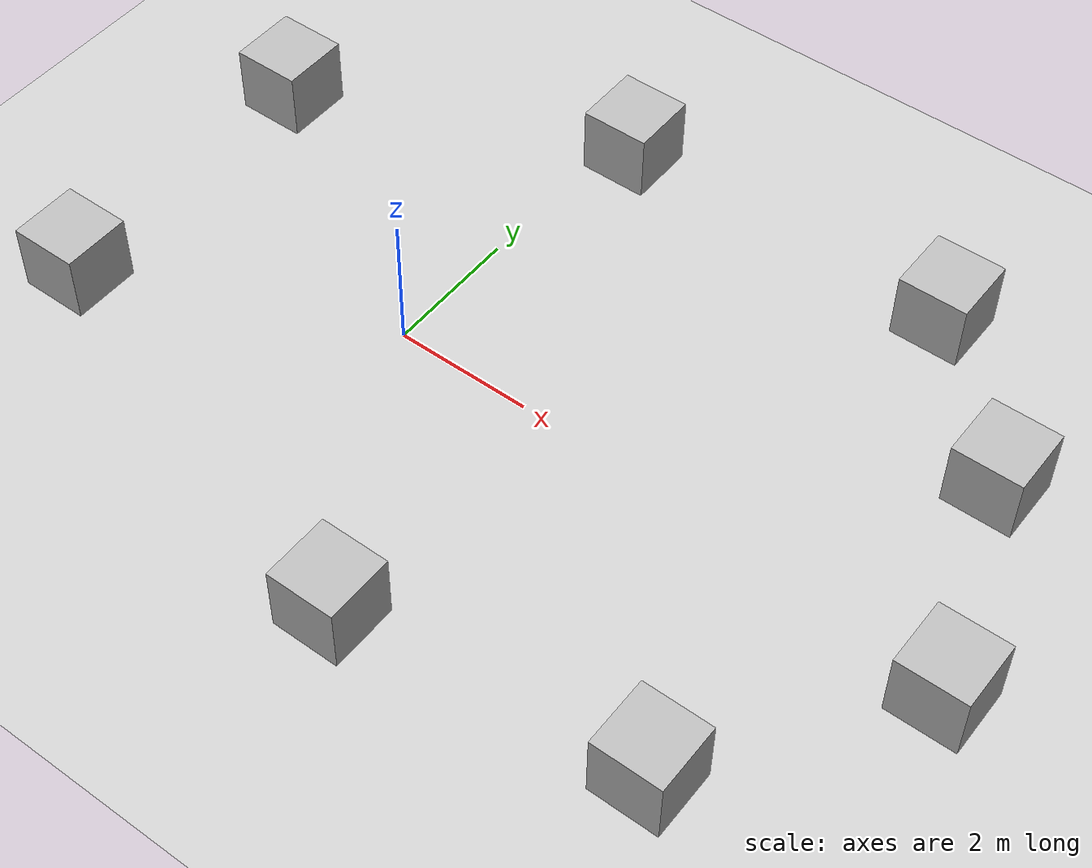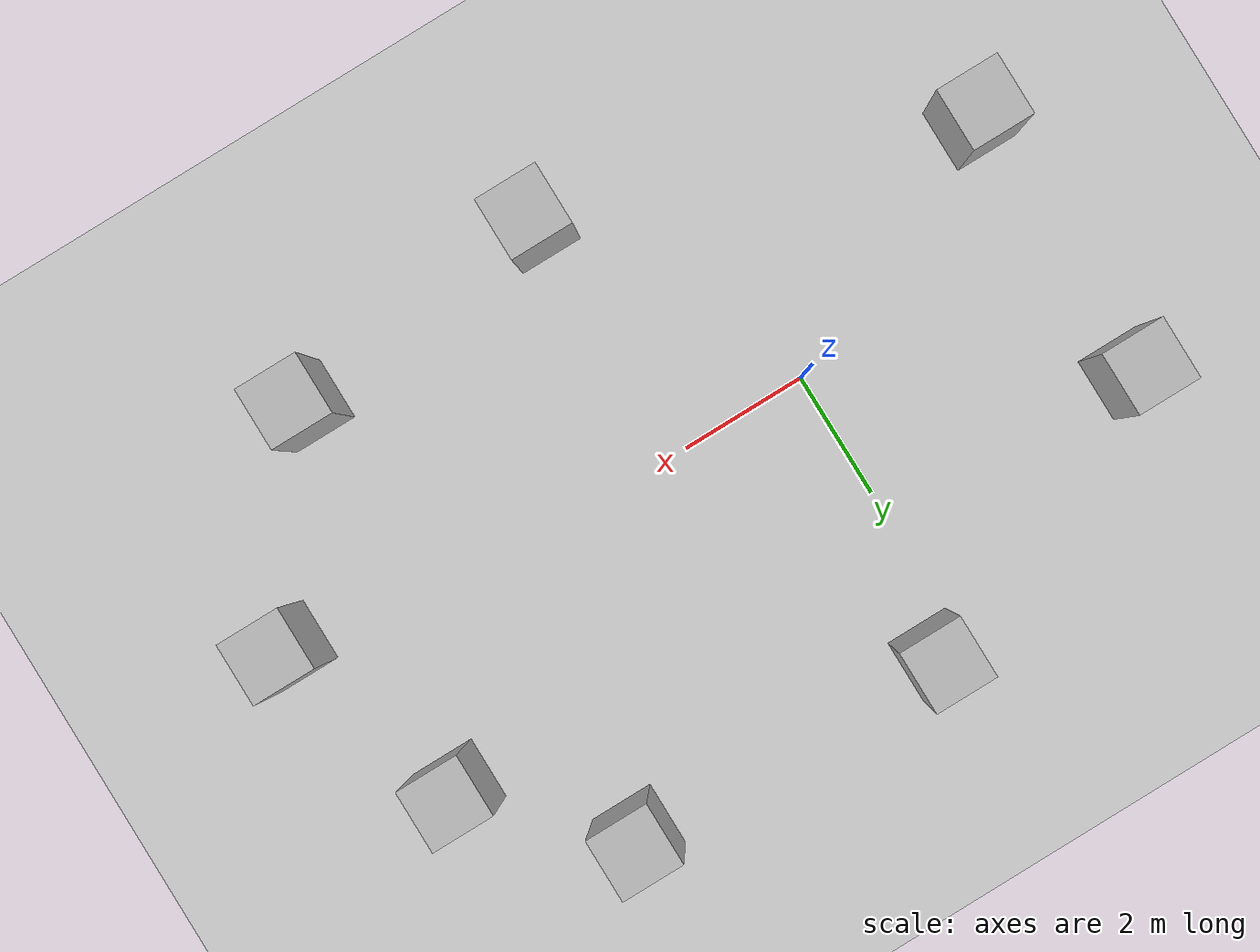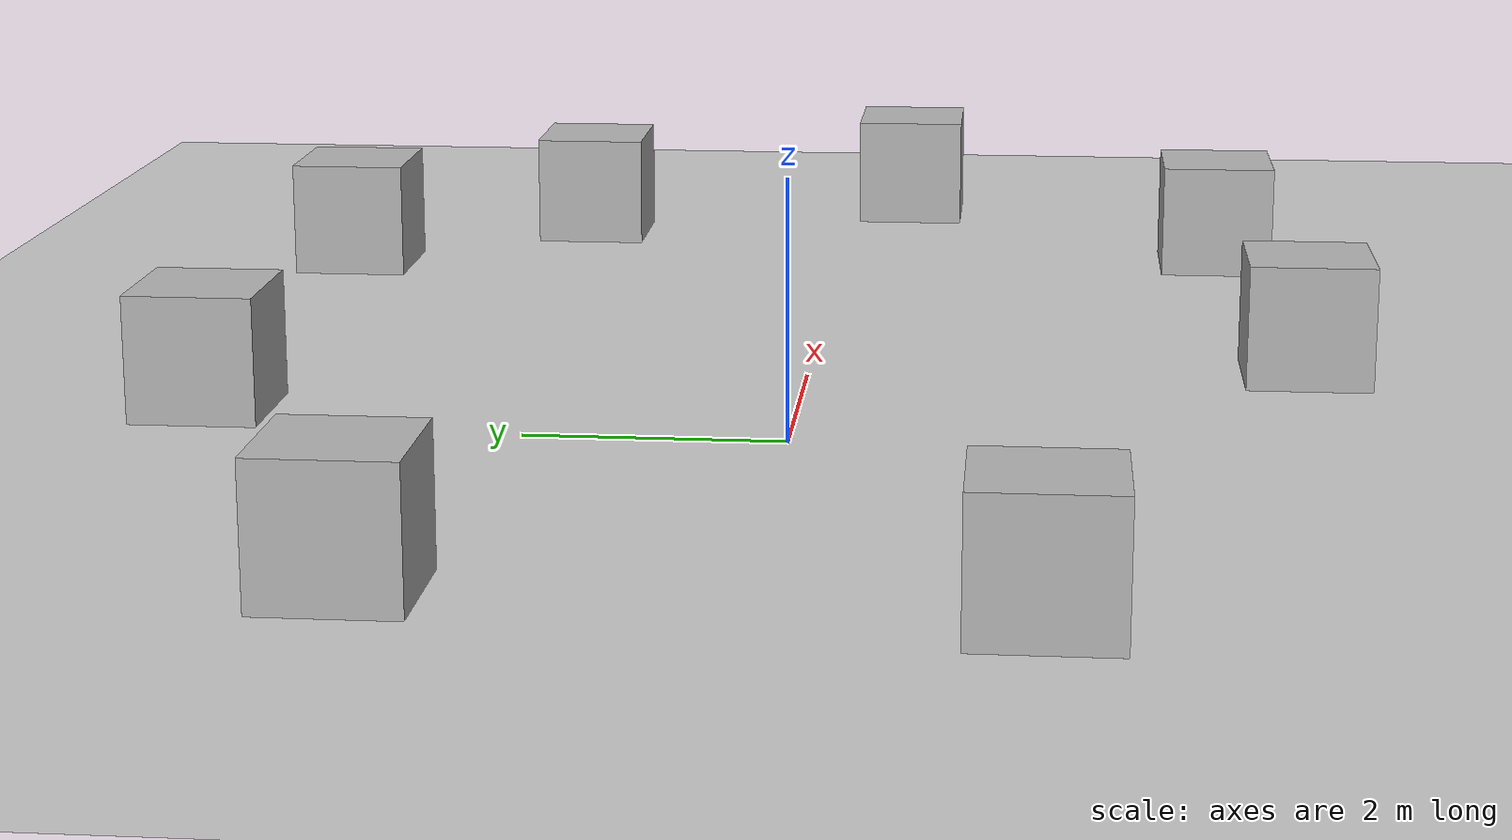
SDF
<sdf version="1.7">
 <world name="default">
  <light name="sun" type="directional">
   <pose>0 0 10 0 -0 0</pose>
   <diffuse>0.8 0.8 0.8 1</diffuse>
   <specular>0.2 0.2 0.2 1</specular>
   <attenuation>
    <range>1000</range>
    <constant>0.9</constant>
    <linear>0.01</linear>
    <quadratic>0.001</quadratic>
   </attenuation>
   <direction>-0.5 0.1 -0.9</direction>
  </light>
  <model name="ground_plane">
   <static>1</static>
   <link name="link">
    <collision name="collision">
     <geometry><plane><normal>0 0 1</normal><size>100 100</size></plane></geometry>
     <surface>
      <contact><collide_bitmask>65535</collide_bitmask></contact>
      <friction><ode><mu>100</mu><mu2>50</mu2></ode></friction>
     </surface>
    </collision>
    <visual name="visual">
     <cast_shadows>0</cast_shadows>
     <geometry><plane><normal>0 0 1</normal><size>100 100</size></plane></geometry>
     <material>
      <script><uri>file://media/materials/scripts/gazebo.material</uri><name>Gazebo/Grey</name></script>
     </material>
    </visual>
   </link>
  </model>
  <gravity>0 0 -9.8</gravity>
  <magnetic_field>6e-06 2.3e-05 -4.2e-05</magnetic_field>
  <atmosphere type="adiabatic"/>
  <physics type="ode">
   <max_step_size>0.001</max_step_size>
   <real_time_factor>1</real_time_factor>
   <real_time_update_rate>1000</real_time_update_rate>
  </physics>
  <scene><ambient>0.4 0.4 0.4 1</ambient><background>0.7 0.7 0.7 1</background><shadows>1</shadows></scene>
  <spherical_coordinates>
   <surface_model>EARTH_WGS84</surface_model>
   <latitude_deg>0</latitude_deg>
   <longitude_deg>0</longitude_deg>
   <elevation>0</elevation>
   <heading_deg>0</heading_deg>
  </spherical_coordinates>
  <model name="skittles">
   <link name="link_0">
    <inertial>
     <mass>1</mass>
     <inertia>
      <ixx>0.166667</ixx>
      <ixy>0</ixy>
      <ixz>0</ixz>
      <iyy>0.166667</iyy>
      <iyz>0</iyz>
      <izz>0.166667</izz>
     </inertia>
    </inertial>
    <visual name="visual">
     <geometry><box><size>1 1 1</size></box></geometry>
     <material>
      <script>
       <uri>model://skittles/materials/scripts</uri>
       <uri>model://skittles/materials/textures</uri>
       <name>SkittlesTexture</name>
      </script>
     </material>
    </visual>
    <collision name="collision">
     <geometry><box><size>1 1 1</size></box></geometry>
     <surface>
      <friction>
       <ode><mu>1</mu><mu2>1</mu2><fdir1>0 0 0</fdir1><slip1>0</slip1><slip2>0</slip2></ode>
       <torsional>
        <coefficient>1</coefficient>
        <patch_radius>0</patch_radius>
        <surface_radius>0</surface_radius>
        <use_patch_radius>1</use_patch_radius>
        <ode><slip>0</slip></ode>
       </torsional>
      </friction>
      <bounce><restitution_coefficient>0</restitution_coefficient><threshold>1e+06</threshold></bounce>
      <contact>
       <collide_without_contact>0</collide_without_contact>
       <collide_without_contact_bitmask>1</collide_without_contact_bitmask>
       <collide_bitmask>1</collide_bitmask>
       <ode>
        <soft_cfm>0</soft_cfm>
        <soft_erp>0.2</soft_erp>
        <kp>1e+13</kp>
        <kd>1</kd>
        <max_vel>0.01</max_vel>
        <min_depth>0</min_depth>
       </ode>
       <bullet>
        <split_impulse>1</split_impulse>
        <split_impulse_penetration_threshold>-0.01</split_impulse_penetration_threshold>
        <soft_cfm>0</soft_cfm>
        <soft_erp>0.2</soft_erp>
        <kp>1e+13</kp>
        <kd>1</kd>
       </bullet>
      </contact>
     </surface>
    </collision>
   </link>
   <static>0</static>
   <pose>0.464514 4.53329 0.523855 0 -0 0</pose>
  </model>
  <model name="haribo">
   <link name="link_0">
    <inertial>
     <mass>1</mass>
     <inertia>
      <ixx>0.166667</ixx>
      <ixy>0</ixy>
      <ixz>0</ixz>
      <iyy>0.166667</iyy>
      <iyz>0</iyz>
      <izz>0.166667</izz>
     </inertia>
    </inertial>
    <visual name="visual">
     <geometry><box><size>1 1 1</size></box></geometry>
     <material>
      <script>
       <uri>model://haribo/materials/scripts</uri>
       <uri>model://haribo/materials/textures</uri>
       <name>HariboTexture</name>
      </script>
      <shader type="pixel"/>
     </material>
    </visual>
    <collision name="collision">
     <geometry><box><size>1 1 1</size></box></geometry>
     <surface>
      <friction>
       <ode><mu>1</mu><mu2>1</mu2><fdir1>0 0 0</fdir1><slip1>0</slip1><slip2>0</slip2></ode>
       <torsional>
        <coefficient>1</coefficient>
        <patch_radius>0</patch_radius>
        <surface_radius>0</surface_radius>
        <use_patch_radius>1</use_patch_radius>
        <ode><slip>0</slip></ode>
       </torsional>
      </friction>
      <bounce><restitution_coefficient>0</restitution_coefficient><threshold>1e+06</threshold></bounce>
      <contact>
       <collide_without_contact>0</collide_without_contact>
       <collide_without_contact_bitmask>1</collide_without_contact_bitmask>
       <collide_bitmask>1</collide_bitmask>
       <ode>
        <soft_cfm>0</soft_cfm>
        <soft_erp>0.2</soft_erp>
        <kp>1e+13</kp>
        <kd>1</kd>
        <max_vel>0.01</max_vel>
        <min_depth>0</min_depth>
       </ode>
       <bullet>
        <split_impulse>1</split_impulse>
        <split_impulse_penetration_threshold>-0.01</split_impulse_penetration_threshold>
        <soft_cfm>0</soft_cfm>
        <soft_erp>0.2</soft_erp>
        <kp>1e+13</kp>
        <kd>1</kd>
       </bullet>
      </contact>
     </surface>
    </collision>
   </link>
   <static>0</static>
   <pose>5.56285 4.45855 0.557558 0 -0 0</pose>
  </model>
  <model name="nerds">
   <link name="link_0">
    <inertial>
     <mass>1</mass>
     <inertia>
      <ixx>0.166667</ixx>
      <ixy>0</ixy>
      <ixz>0</ixz>
      <iyy>0.166667</iyy>
      <iyz>0</iyz>
      <izz>0.166667</izz>
     </inertia>
    </inertial>
    <visual name="visual">
     <geometry><box><size>1 1 1</size></box></geometry>
     <material>
      <script>
       <uri>model://nerds/materials/scripts</uri>
       <uri>model://nerds/materials/textures</uri>
       <name>NerdsTexture</name>
      </script>
     </material>
    </visual>
    <collision name="collision">
     <geometry><box><size>1 1 1</size></box></geometry>
     <surface>
      <friction>
       <ode><mu>1</mu><mu2>1</mu2><fdir1>0 0 0</fdir1><slip1>0</slip1><slip2>0</slip2></ode>
       <torsional>
        <coefficient>1</coefficient>
        <patch_radius>0</patch_radius>
        <surface_radius>0</surface_radius>
        <use_patch_radius>1</use_patch_radius>
        <ode><slip>0</slip></ode>
       </torsional>
      </friction>
      <bounce><restitution_coefficient>0</restitution_coefficient><threshold>1e+06</threshold></bounce>
      <contact>
       <collide_without_contact>0</collide_without_contact>
       <collide_without_contact_bitmask>1</collide_without_contact_bitmask>
       <collide_bitmask>1</collide_bitmask>
       <ode>
        <soft_cfm>0</soft_cfm>
        <soft_erp>0.2</soft_erp>
        <kp>1e+13</kp>
        <kd>1</kd>
        <max_vel>0.01</max_vel>
        <min_depth>0</min_depth>
       </ode>
       <bullet>
        <split_impulse>1</split_impulse>
        <split_impulse_penetration_threshold>-0.01</split_impulse_penetration_threshold>
        <soft_cfm>0</soft_cfm>
        <soft_erp>0.2</soft_erp>
        <kp>1e+13</kp>
        <kd>1</kd>
       </bullet>
      </contact>
     </surface>
    </collision>
   </link>
   <static>0</static>
   <pose>7.4921 2.50482 0.477706 0 -0 0</pose>
  </model>
  <model name="reeses">
   <link name="link_0">
    <inertial>
     <mass>1</mass>
     <inertia>
      <ixx>0.166667</ixx>
      <ixy>0</ixy>
      <ixz>0</ixz>
      <iyy>0.166667</iyy>
      <iyz>0</iyz>
      <izz>0.166667</izz>
     </inertia>
    </inertial>
    <visual name="visual">
     <geometry><box><size>1 1 1</size></box></geometry>
     <material>
      <script>
       <uri>model://reeses/materials/scripts</uri>
       <uri>model://reeses/materials/textures</uri>
       <name>ReesesTexture</name>
      </script>
     </material>
    </visual>
    <collision name="collision">
     <geometry><box><size>1 1 1</size></box></geometry>
     <surface>
      <friction>
       <ode><mu>1</mu><mu2>1</mu2><fdir1>0 0 0</fdir1><slip1>0</slip1><slip2>0</slip2></ode>
       <torsional>
        <coefficient>1</coefficient>
        <patch_radius>0</patch_radius>
        <surface_radius>0</surface_radius>
        <use_patch_radius>1</use_patch_radius>
        <ode><slip>0</slip></ode>
       </torsional>
      </friction>
      <bounce><restitution_coefficient>0</restitution_coefficient><threshold>1e+06</threshold></bounce>
      <contact>
       <collide_without_contact>0</collide_without_contact>
       <collide_without_contact_bitmask>1</collide_without_contact_bitmask>
       <collide_bitmask>1</collide_bitmask>
       <ode>
        <soft_cfm>0</soft_cfm>
        <soft_erp>0.2</soft_erp>
        <kp>1e+13</kp>
        <kd>1</kd>
        <max_vel>0.01</max_vel>
        <min_depth>0</min_depth>
       </ode>
       <bullet>
        <split_impulse>1</split_impulse>
        <split_impulse_penetration_threshold>-0.01</split_impulse_penetration_threshold>
        <soft_cfm>0</soft_cfm>
        <soft_erp>0.2</soft_erp>
        <kp>1e+13</kp>
        <kd>1</kd>
       </bullet>
      </contact>
     </surface>
    </collision>
   </link>
   <static>0</static>
   <pose>8.5349 -0.562949 0.516567 0 -0 0</pose>
  </model>
  <model name="snickers">
   <link name="link_0">
    <inertial>
     <mass>1</mass>
     <inertia>
      <ixx>0.166667</ixx>
      <ixy>0</ixy>
      <ixz>0</ixz>
      <iyy>0.166667</iyy>
      <iyz>0</iyz>
      <izz>0.166667</izz>
     </inertia>
    </inertial>
    <visual name="visual">
     <geometry><box><size>1 1 1</size></box></geometry>
     <material>
      <script>
       <uri>model://snickers/materials/scripts</uri>
       <uri>model://snickers/materials/textures</uri>
       <name>SnickersTexture</name>
      </script>
     </material>
    </visual>
    <collision name="collision">
     <geometry><box><size>1 1 1</size></box></geometry>
     <surface>
      <friction>
       <ode><mu>1</mu><mu2>1</mu2><fdir1>0 0 0</fdir1><slip1>0</slip1><slip2>0</slip2></ode>
       <torsional>
        <coefficient>1</coefficient>
        <patch_radius>0</patch_radius>
        <surface_radius>0</surface_radius>
        <use_patch_radius>1</use_patch_radius>
        <ode><slip>0</slip></ode>
       </torsional>
      </friction>
      <bounce><restitution_coefficient>0</restitution_coefficient><threshold>1e+06</threshold></bounce>
      <contact>
       <collide_without_contact>0</collide_without_contact>
       <collide_without_contact_bitmask>1</collide_without_contact_bitmask>
       <collide_bitmask>1</collide_bitmask>
       <ode>
        <soft_cfm>0</soft_cfm>
        <soft_erp>0.2</soft_erp>
        <kp>1e+13</kp>
        <kd>1</kd>
        <max_vel>0.01</max_vel>
        <min_depth>0</min_depth>
       </ode>
       <bullet>
        <split_impulse>1</split_impulse>
        <split_impulse_penetration_threshold>-0.01</split_impulse_penetration_threshold>
        <soft_cfm>0</soft_cfm>
        <soft_erp>0.2</soft_erp>
        <kp>1e+13</kp>
        <kd>1</kd>
       </bullet>
      </contact>
     </surface>
    </collision>
   </link>
   <static>0</static>
   <pose>6.45937 -3.48752 0.494415 0 -0 0</pose>
  </model>
  <model name="starburst">
   <link name="link_0">
    <inertial>
     <mass>1</mass>
     <inertia>
      <ixx>0.166667</ixx>
      <ixy>0</ixy>
      <ixz>0</ixz>
      <iyy>0.166667</iyy>
      <iyz>0</iyz>
      <izz>0.166667</izz>
     </inertia>
    </inertial>
    <visual name="visual">
     <geometry><box><size>1 1 1</size></box></geometry>
     <material>
      <script>
       <uri>model://starburst/materials/scripts</uri>
       <uri>model://starburst/materials/textures</uri>
       <name>StarburstTexture</name>
      </script>
     </material>
    </visual>
    <collision name="collision">
     <geometry><box><size>1 1 1</size></box></geometry>
     <surface>
      <friction>
       <ode><mu>1</mu><mu2>1</mu2><fdir1>0 0 0</fdir1><slip1>0</slip1><slip2>0</slip2></ode>
       <torsional>
        <coefficient>1</coefficient>
        <patch_radius>0</patch_radius>
        <surface_radius>0</surface_radius>
        <use_patch_radius>1</use_patch_radius>
        <ode><slip>0</slip></ode>
       </torsional>
      </friction>
      <bounce><restitution_coefficient>0</restitution_coefficient><threshold>1e+06</threshold></bounce>
      <contact>
       <collide_without_contact>0</collide_without_contact>
       <collide_without_contact_bitmask>1</collide_without_contact_bitmask>
       <collide_bitmask>1</collide_bitmask>
       <ode>
        <soft_cfm>0</soft_cfm>
        <soft_erp>0.2</soft_erp>
        <kp>1e+13</kp>
        <kd>1</kd>
        <max_vel>0.01</max_vel>
        <min_depth>0</min_depth>
       </ode>
       <bullet>
        <split_impulse>1</split_impulse>
        <split_impulse_penetration_threshold>-0.01</split_impulse_penetration_threshold>
        <soft_cfm>0</soft_cfm>
        <soft_erp>0.2</soft_erp>
        <kp>1e+13</kp>
        <kd>1</kd>
       </bullet>
      </contact>
     </surface>
    </collision>
   </link>
   <static>0</static>
   <pose>2.20207 -3.98829 0.52809 0 -0 0</pose>
  </model>
  <model name="swedish_fish">
   <link name="link_0">
    <inertial>
     <mass>1</mass>
     <inertia>
      <ixx>0.166667</ixx>
      <ixy>0</ixy>
      <ixz>0</ixz>
      <iyy>0.166667</iyy>
      <iyz>0</iyz>
      <izz>0.166667</izz>
     </inertia>
    </inertial>
    <visual name="visual">
     <geometry><box><size>1 1 1</size></box></geometry>
     <material>
      <script>
       <uri>model://swedish_fish/materials/scripts</uri>
       <uri>model://swedish_fish/materials/textures</uri>
       <name>SwedishFishTexture</name>
      </script>
     </material>
    </visual>
    <collision name="collision">
     <geometry><box><size>1 1 1</size></box></geometry>
     <surface>
      <friction>
       <ode><mu>1</mu><mu2>1</mu2><fdir1>0 0 0</fdir1><slip1>0</slip1><slip2>0</slip2></ode>
       <torsional>
        <coefficient>1</coefficient>
        <patch_radius>0</patch_radius>
        <surface_radius>0</surface_radius>
        <use_patch_radius>1</use_patch_radius>
        <ode><slip>0</slip></ode>
       </torsional>
      </friction>
      <bounce><restitution_coefficient>0</restitution_coefficient><threshold>1e+06</threshold></bounce>
      <contact>
       <collide_without_contact>0</collide_without_contact>
       <collide_without_contact_bitmask>1</collide_without_contact_bitmask>
       <collide_bitmask>1</collide_bitmask>
       <ode>
        <soft_cfm>0</soft_cfm>
        <soft_erp>0.2</soft_erp>
        <kp>1e+13</kp>
        <kd>1</kd>
        <max_vel>0.01</max_vel>
        <min_depth>0</min_depth>
       </ode>
       <bullet>
        <split_impulse>1</split_impulse>
        <split_impulse_penetration_threshold>-0.01</split_impulse_penetration_threshold>
        <soft_cfm>0</soft_cfm>
        <soft_erp>0.2</soft_erp>
        <kp>1e+13</kp>
        <kd>1</kd>
       </bullet>
      </contact>
     </surface>
    </collision>
   </link>
   <static>0</static>
   <pose>-4.10588 -1.90512 0.542353 0 -0 0</pose>
  </model>
  <model name="twizzlers">
   <link name="link_0">
    <inertial>
     <mass>1</mass>
     <inertia>
      <ixx>0.166667</ixx>
      <ixy>0</ixy>
      <ixz>0</ixz>
      <iyy>0.166667</iyy>
      <iyz>0</iyz>
      <izz>0.166667</izz>
     </inertia>
    </inertial>
    <visual name="visual">
     <geometry><box><size>1 1 1</size></box></geometry>
     <material>
      <script>
       <uri>model://twizzlers/materials/scripts</uri>
       <uri>model://twizzlers/materials/textures</uri>
       <name>TwizzlersTexture</name>
      </script>
     </material>
    </visual>
    <collision name="collision">
     <geometry><box><size>1 1 1</size></box></geometry>
     <surface>
      <friction>
       <ode><mu>1</mu><mu2>1</mu2><fdir1>0 0 0</fdir1><slip1>0</slip1><slip2>0</slip2></ode>
       <torsional>
        <coefficient>1</coefficient>
        <patch_radius>0</patch_radius>
        <surface_radius>0</surface_radius>
        <use_patch_radius>1</use_patch_radius>
        <ode><slip>0</slip></ode>
       </torsional>
      </friction>
      <bounce><restitution_coefficient>0</restitution_coefficient><threshold>1e+06</threshold></bounce>
      <contact>
       <collide_without_contact>0</collide_without_contact>
       <collide_without_contact_bitmask>1</collide_without_contact_bitmask>
       <collide_bitmask>1</collide_bitmask>
       <ode>
        <soft_cfm>0</soft_cfm>
        <soft_erp>0.2</soft_erp>
        <kp>1e+13</kp>
        <kd>1</kd>
        <max_vel>0.01</max_vel>
        <min_depth>0</min_depth>
       </ode>
       <bullet>
        <split_impulse>1</split_impulse>
        <split_impulse_penetration_threshold>-0.01</split_impulse_penetration_threshold>
        <soft_cfm>0</soft_cfm>
        <soft_erp>0.2</soft_erp>
        <kp>1e+13</kp>
        <kd>1</kd>
       </bullet>
      </contact>
     </surface>
    </collision>
   </link>
   <static>0</static>
   <pose>-4.10078 2.44367 0.636226 0 -0 0</pose>
  </model>
 </world>
</sdf>
